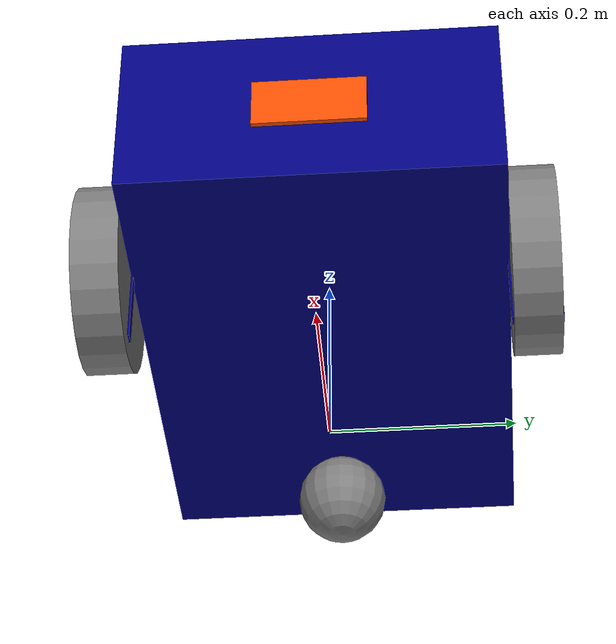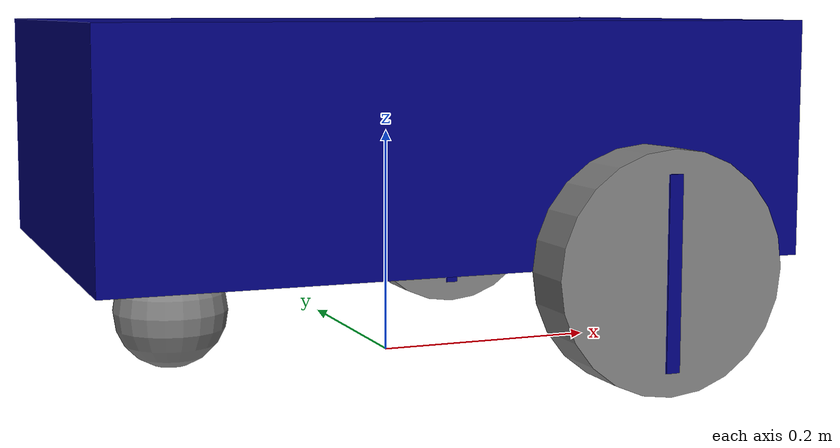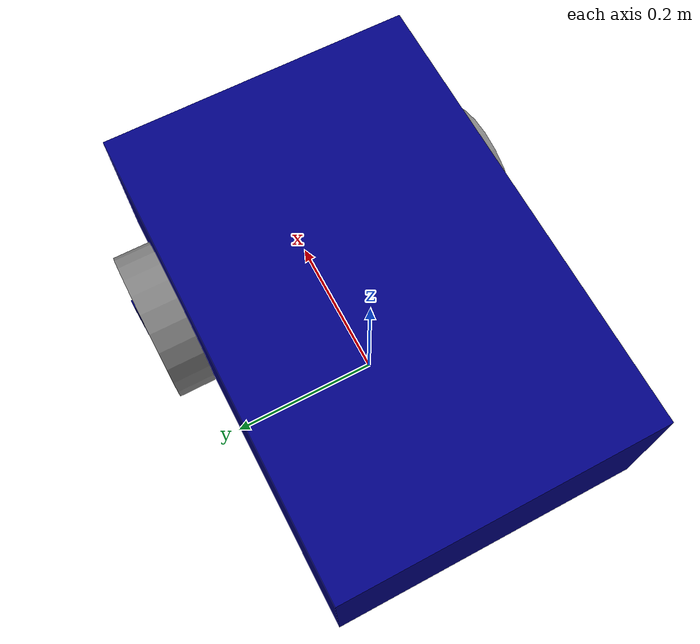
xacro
<?xml version="1.0"?>
<robot name="my_robot" xmlns:xacro="http://www.ros.org/wiki/xacro">
  <xacro:arg name="gazebo" default="false"/>
  <xacro:include filename="common_properties.xacro"/>
  <xacro:include filename="mobile_base.xacro"/>
  <xacro:if value="$(arg gazebo)">
    <xacro:include filename="mobile_base_gazebo.xacro"/>
  </xacro:if>
</robot>

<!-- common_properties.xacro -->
<robot xmlns:xacro="http://www.ros.org/wiki/xacro">
  <material name="blue"><color rgba="0 0 0.5 1"/></material>
  <material name="grey"><color rgba="0.5 0.5 0.5 1"/></material>

  <xacro:macro name="box_inertia" params="m x y z o_xyz o_rpy">
    <inertial>
      <origin xyz="${o_xyz}" rpy="${o_rpy}"/>
      <mass value="${m}"/>
      <inertia ixx="${m*(y*y+z*z)/12}" ixy="0" ixz="0"
               iyy="${m*(x*x+z*z)/12}" iyz="0" izz="${m*(x*x+y*y)/12}"/>
    </inertial>
  </xacro:macro>
  <xacro:macro name="cylinder_inertia" params="m r l o_xyz o_rpy">
    <inertial>
      <origin xyz="${o_xyz}" rpy="${o_rpy}"/>
      <mass value="${m}"/>
      <inertia ixx="${m*(3*r*r+l*l)/12}" ixy="0" ixz="0"
               iyy="${m*(3*r*r+l*l)/12}" iyz="0" izz="${m*r*r/2}"/>
    </inertial>
  </xacro:macro>
  <xacro:macro name="sphere_inertia" params="m r o_xyz o_rpy">
    <inertial>
      <origin xyz="${o_xyz}" rpy="${o_rpy}"/>
      <mass value="${m}"/>
      <inertia ixx="${2*m*r*r/5}" ixy="0" ixz="0"
               iyy="${2*m*r*r/5}" iyz="0" izz="${2*m*r*r/5}"/>
    </inertial>
  </xacro:macro>
</robot>

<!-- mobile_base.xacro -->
<robot xmlns:xacro="http://www.ros.org/wiki/xacro">
  <xacro:property name="base_length" value="0.6" />
  <xacro:property name="base_width" value="0.4" />
  <xacro:property name="base_height" value="0.2" />
  <xacro:property name="wheel_radius" value="0.1" />
  <xacro:property name="wheel_length" value="0.05" />
  <xacro:property name="caster_radius" value="${wheel_radius/2}" />

  <link name="base_footprint" />
  <joint name="base_footprint_joint" type="fixed">
    <parent link="base_footprint" />
    <child link="base_link" />
    <origin xyz="0 0 ${wheel_radius}" />
  </joint>

  <link name="base_link">
    <visual>
      <origin xyz="0 0 ${base_height/2}" />
      <geometry><box size="${base_length} ${base_width} ${base_height}" /></geometry>
      <material name="blue" />
    </visual>
    <collision>
      <origin xyz="0 0 ${base_height/2}" />
      <geometry><box size="${base_length} ${base_width} ${base_height}" /></geometry>
    </collision>
    <xacro:box_inertia m="5.0" x="${base_length}" y="${base_width}" z="${base_height}" o_xyz="0 0 ${base_height/2}" o_rpy="0 0 0" />
  </link>

  <xacro:macro name="wheel_link" params="prefix">
    <link name="${prefix}_wheel_link">
      <visual>
        <origin rpy="${pi/2} 0 0" />
        <geometry><cylinder radius="${wheel_radius}" length="${wheel_length}" /></geometry>
        <material name="grey" />
      </visual>
      <visual>
        <geometry><box size="${wheel_radius*0.12} ${wheel_length+0.004} ${wheel_radius*1.6}" /></geometry>
        <material name="blue" />
      </visual>
      <collision>
        <geometry><sphere radius="${wheel_radius}" /></geometry>
      </collision>
      <xacro:cylinder_inertia m="1.0" r="${wheel_radius}" l="${wheel_length}" o_xyz="0 0 0" o_rpy="${pi/2} 0 0" />
    </link>
  </xacro:macro>

  <xacro:wheel_link prefix="left" />
  <xacro:wheel_link prefix="right" />

  <joint name="base_left_wheel_joint" type="continuous">
    <parent link="base_link" />
    <child link="left_wheel_link" />
    <origin xyz="${base_length/4} ${base_width/2+wheel_length/2} 0" />
    <axis xyz="0 1 0" />
  </joint>
  <joint name="base_right_wheel_joint" type="continuous">
    <parent link="base_link" />
    <child link="right_wheel_link" />
    <origin xyz="${base_length/4} ${-base_width/2-wheel_length/2} 0" />
    <axis xyz="0 1 0" />
  </joint>

  <link name="caster_wheel_link">
    <visual>
      <geometry><sphere radius="${caster_radius}" /></geometry>
      <material name="grey" />
    </visual>
    <collision><geometry><sphere radius="${caster_radius}" /></geometry></collision>
    <xacro:sphere_inertia m="0.5" r="${caster_radius}" o_xyz="0 0 0" o_rpy="0 0 0" />
  </link>
  <joint name="base_caster_wheel_joint" type="fixed">
    <parent link="base_link" />
    <child link="caster_wheel_link" />
    <origin xyz="${-base_length/3} 0 ${caster_radius-wheel_radius}" />
  </joint>
<link name="front_marker_link"><visual>
      <origin xyz="0 0 0" />
      <geometry><box size="0.01 0.12 0.06" /></geometry>
      <material name="front_marker"><color rgba="1 0.3 0 1" /></material>
    </visual>
    </link><joint name="front_marker_joint" type="fixed"><parent link="base_link" /><child link="front_marker_link" /><origin xyz="${base_length/2} 0 ${base_height/2}" /></joint></robot>
